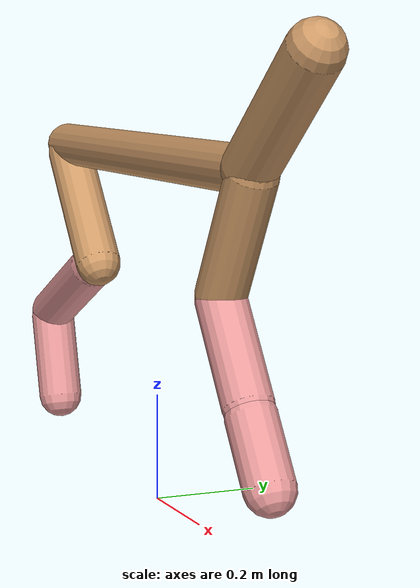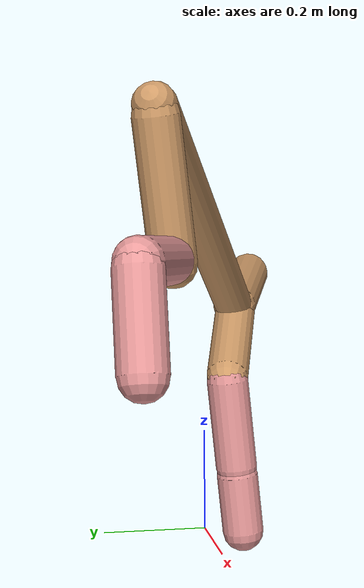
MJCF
<mujoco model="cheetah">
  <compiler angle="radian" coordinate="local" inertiafromgeom="true" settotalmass="14" />
  <default>
    <joint armature=".1" damping=".01" limited="true" solimplimit="0 .8 .03" solreflimit=".02 1" stiffness="8" />
    <geom conaffinity="0" condim="3" contype="1" friction="0.8 .1 .1" rgba="0.8 0.6 .4 1" solimp="0.0 0.8 0.01" solref="0.02 1" />
    <motor ctrllimited="true" ctrlrange="-1 1" />
  </default>
  <size nstack="300000" nuser_geom="1" />
  <option gravity="0 0 -9.81" timestep="0.01" />
  <worldbody>
    <body name="torso" pos="0.0 0.0 0.6485085671872665">
      <joint armature="0" axis="1 0 0" damping="0" limited="false" name="ignorex" pos="0 0 0" stiffness="0" type="slide" />
      <joint armature="0" axis="0 0 1" damping="0" limited="false" name="ignorez" pos="0 0 0" stiffness="0" type="slide" />
      <joint armature="0" axis="0 1 0" damping="0" limited="false" name="ignorey" pos="0 0 0" stiffness="0" type="hinge" />
      <geom fromto="-0.5 0.0 0.0 0.41619733714785123 0.0 0.0" name="torso" size="0.04275754175686827" type="capsule" />
      <geom axisangle="0 1 0 .87" name="head" pos="0.5161973371478512 0.0 0.1" size="0.04936270314438941 0.15" type="capsule" />

      <body name="bthigh" pos="-.5 0 0">
        <joint axis="0 1 0" damping="6" name="bthigh" pos="0 0 0" range="-.52 1.05" stiffness="240" type="hinge" />
        <geom axisangle="0 1 0 -3.8" name="bthigh" pos="0.09614215449301998 0.0 -0.12498480084092597" size="0.04559122802121149 0.13867266291707933" type="capsule" />
        <body name="bshin" pos="0.15228430898603995 0.0 -0.23996960168185194">
          <joint axis="0 1 0" damping="4.5" name="bshin" pos="0 0 0" range="-.785 .785" stiffness="180" type="hinge" />
          <geom axisangle="0 1 0 -2.03" name="bshin" pos="-0.1341455079307728 0.0 -0.0670727539653864" rgba="0.9 0.6 0.6 1" size="0.04559122802121149 0.14345447887973725" type="capsule" />
          <body name="bfoot" pos="-0.2682910158615456 0.0 -0.1341455079307728">
            <joint axis="0 1 0" damping="3" name="bfoot" pos="0 0 0" range="-.4 .785" stiffness="120" type="hinge" />
            <geom axisangle="0 1 0 -.27" name="bfoot" pos="0.02878802459128167 0.0 -0.09308127951181072" rgba="0.9 0.6 0.6 1" size="0.04559122802121149 0.08989814009796869" type="capsule" />
            <inertial mass="10" />
          </body>
        </body>
      </body>
      <body name="fthigh" pos="0.41619733714785123 0.0 0.0">
        <joint axis="0 1 0" damping="4.5" name="fthigh" pos="0 0 0" range="-1.5 0.8" stiffness="180" type="hinge" />
        <geom axisangle="0 1 0 .52" name="fthigh" pos="-0.06595232430698782 0.0 -0.11306112738340768" size="0.04611475725292804 0.1249668417353387" type="capsule" />
        <body name="fshin" pos="-0.13190464861397563 0.0 -0.22612225476681536">
          <joint axis="0 1 0" damping="3" name="fshin" pos="0 0 0" range="-1.2 1.1" stiffness="120" type="hinge" />
          <geom axisangle="0 1 0 -.6" name="fshin" pos="0.06125147475309346 0.0 -0.08480973427351401" rgba="0.9 0.6 0.6 1" size="0.04611475725292804 0.09959763326275113" type="capsule" />
          <body name="ffoot" pos="0.12250294950618693 0.0 -0.16961946854702803">
            <joint axis="0 1 0" damping="1.5" name="ffoot" pos="0 0 0" range="-3.1 -0.3" stiffness="60" type="hinge" />
            <geom axisangle="0 1 0 -.6" name="ffoot" pos="0.042713688782190326 0.0 -0.06644351588340718" rgba="0.9 0.6 0.6 1" size="0.04611475725292804 0.06577202196596774" type="capsule" />
            <inertial mass="10" />
          </body>
        </body>
      </body>
    </body>
  </worldbody>
  <actuator>
    <motor gear="120" joint="bthigh" name="bthigh" />
    <motor gear="90" joint="bshin" name="bshin" />
    <motor gear="60" joint="bfoot" name="bfoot" />
    <motor gear="120" joint="fthigh" name="fthigh" />
    <motor gear="60" joint="fshin" name="fshin" />
    <motor gear="30" joint="ffoot" name="ffoot" />
  </actuator>
</mujoco>
